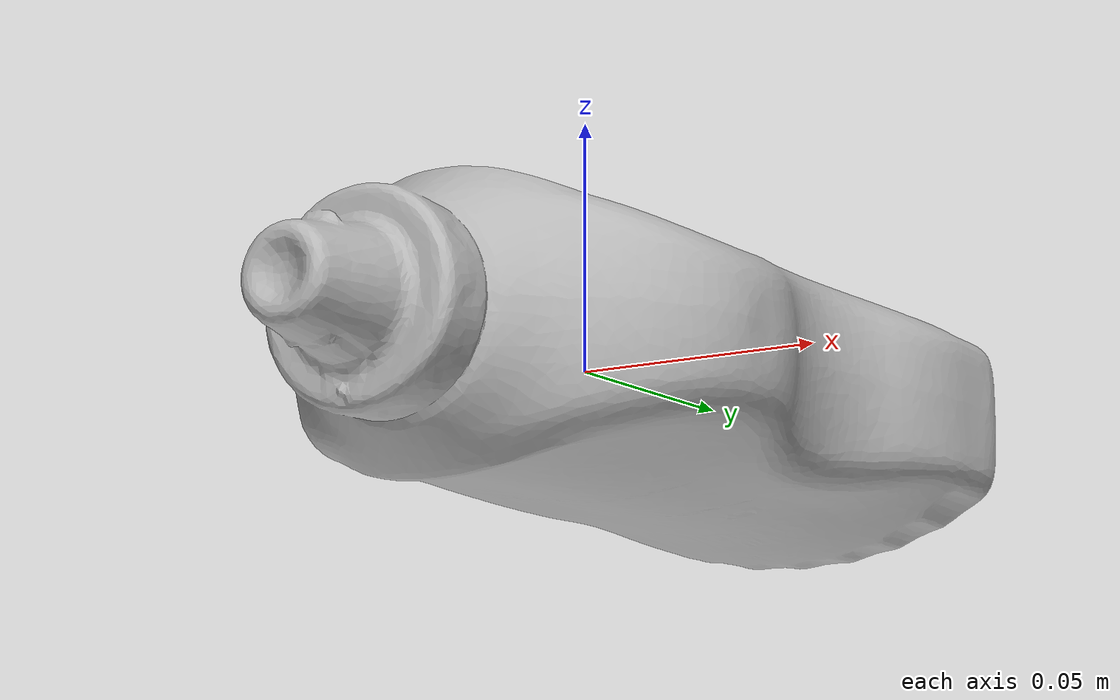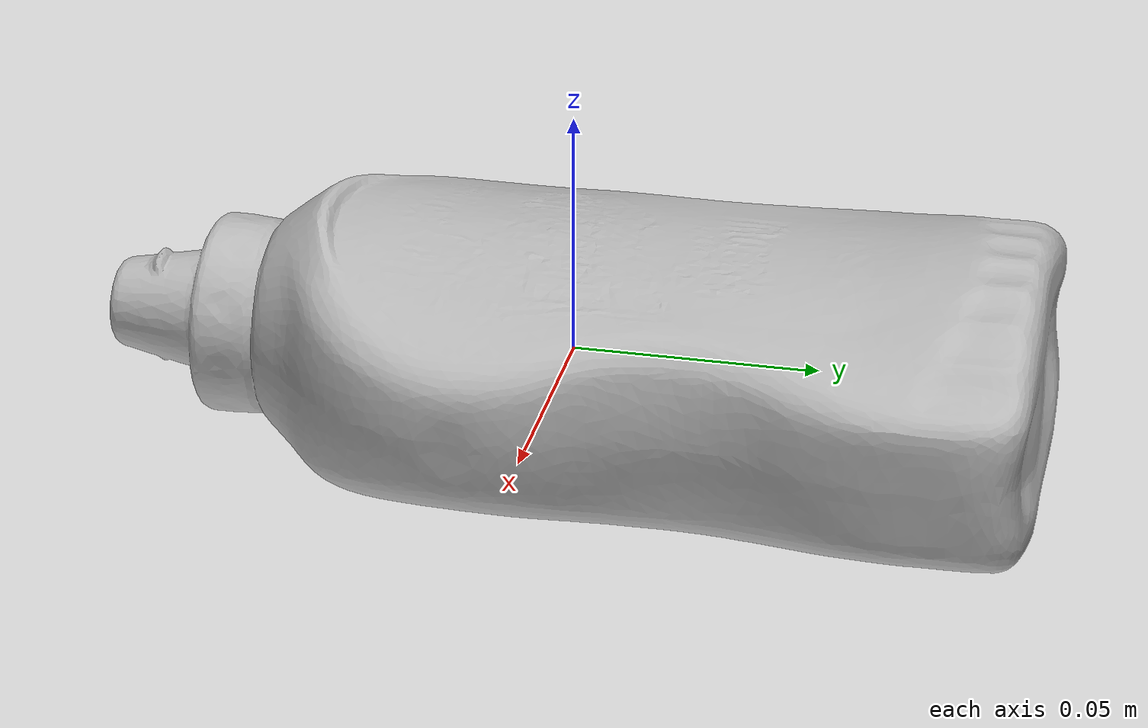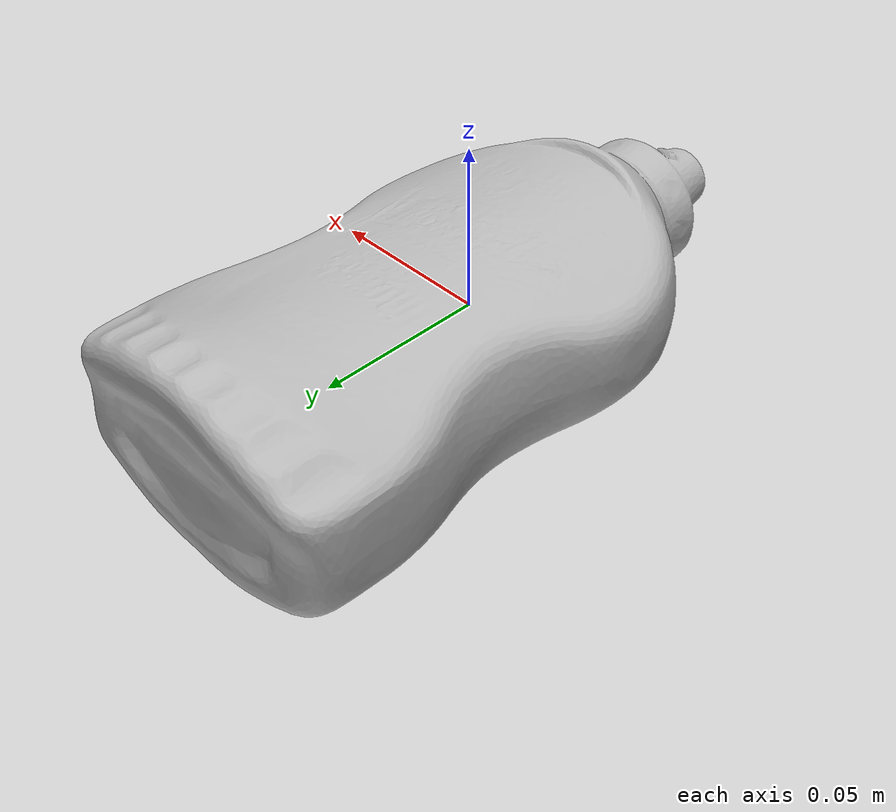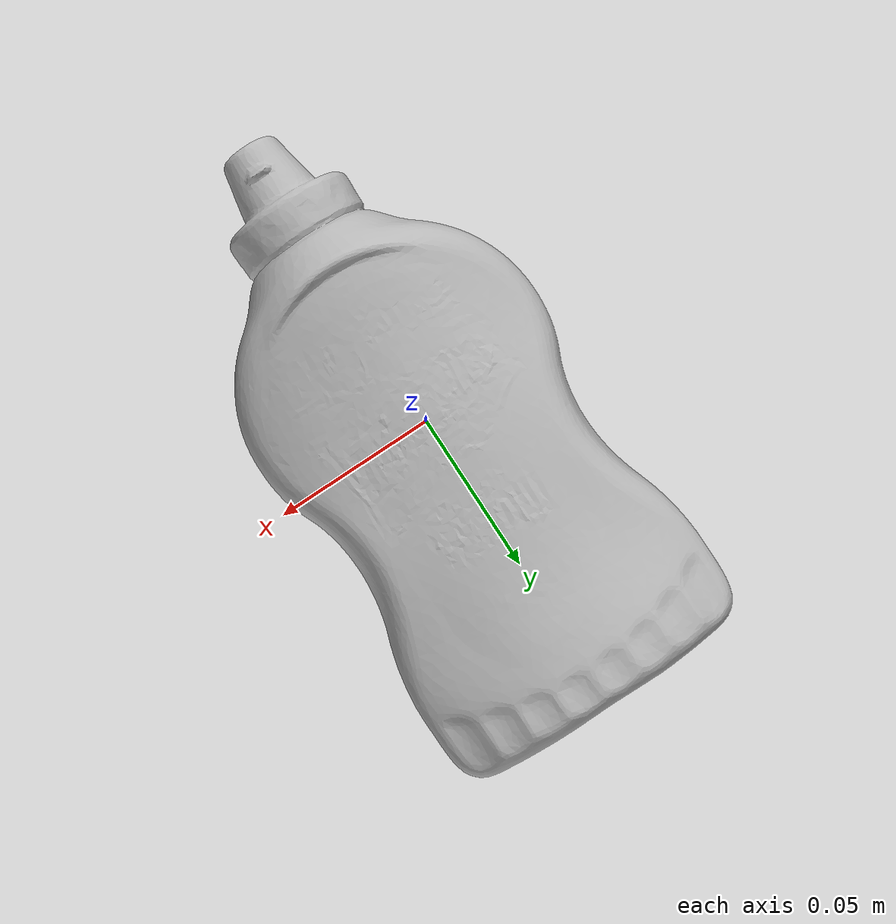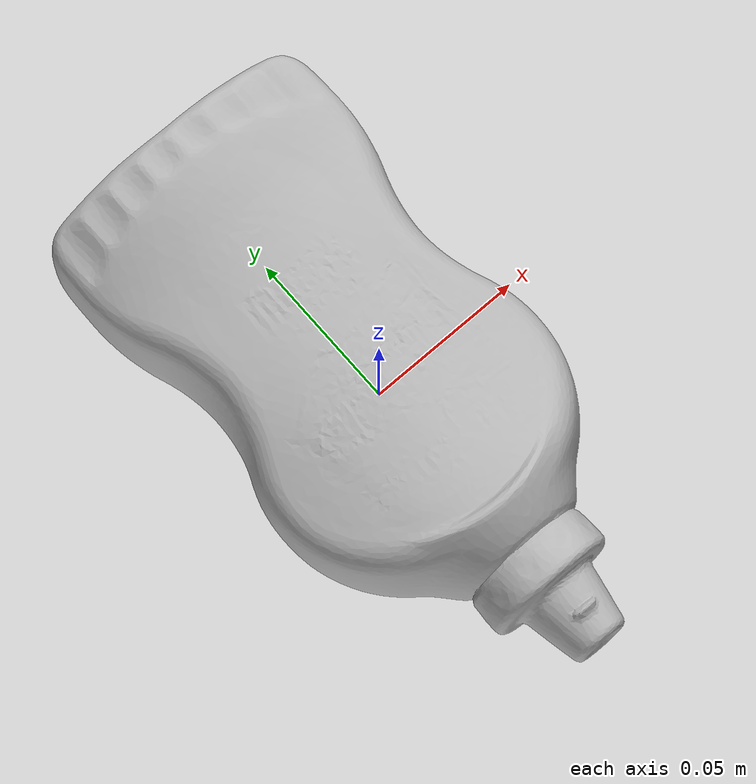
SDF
<?xml version="1.0"?>
<sdf version='1.6'>
<model name="006_mustard_bottle">
  <link name="base_link_mustard">

    <inertial>
      <pose frame=''>0 0 0 0 0 0</pose>
      <mass>0.603000</mass>
        <inertia>
          <ixx>0.001478</ixx>
          <ixy>0</ixy>
          <ixz>0</ixz>
          <iyy>0.000633</iyy>
          <iyz>0</iyz>
          <izz>0.001770</izz>
        </inertia>
    </inertial>

    <visual name='base_link_mustard'>
      <pose frame=''>0 0 0 0 0 0</pose>
      <geometry>
        <mesh>
          <uri>../meshes/006_mustard_bottle_textured.obj</uri>
        </mesh>
      </geometry>
    </visual>

    <collision name='mustard_bottle_collision'>
      <pose>0 0.015 0 0 0 0</pose>
      <geometry>
        <box>
          <size>0.090000 0.155300 0.052200</size>
        </box>
      </geometry>
      <material>
        <diffuse>0 1 0 1.0</diffuse>
      </material>
    </collision>

    <collision name='point_collision1'>
      <pose>0.045500 0.09315 0.026600 0 0 0 </pose>
      <geometry>
        <sphere><radius>1e-7</radius></sphere>
      </geometry>
    </collision>

    <collision name='point_collision2'>
      <pose>0.045500 -0.06315 0.026600 0 0 0 </pose>
      <geometry>
        <sphere><radius>1e-7</radius></sphere>
      </geometry>
    </collision>

    <collision name='point_collision3'>
      <pose>-0.045500 0.09315 0.026600 0 0 0 </pose>
      <geometry>
        <sphere><radius>1e-7</radius></sphere>
      </geometry>
    </collision>

    <collision name='point_collision4'>
      <pose>-0.045500 -0.06315 0.026600 0 0 0 </pose>
      <geometry>
        <sphere><radius>1e-7</radius></sphere>
      </geometry>
    </collision>

    <collision name='point_collision5'>
      <pose>0.045500 0.09315 -0.026600 0 0 0 </pose>
      <geometry>
        <sphere><radius>1e-7</radius></sphere>
      </geometry>
    </collision>

    <collision name='point_collision6'>
      <pose>0.045500 -0.06315 -0.026600 0 0 0 </pose>
      <geometry>
        <sphere><radius>1e-7</radius></sphere>
      </geometry>
    </collision>

    <collision name='point_collision7'>
      <pose>-0.045500 0.09315 -0.026600 0 0 0 </pose>
      <geometry>
        <sphere><radius>1e-7</radius></sphere>
      </geometry>
    </collision>

    <collision name='point_collision8'>
      <pose>-0.045500 -0.06315 -0.026600 0 0 0 </pose>
      <geometry>
        <sphere><radius>1e-7</radius></sphere>
      </geometry>
    </collision>

  </link>
</model>
</sdf>
